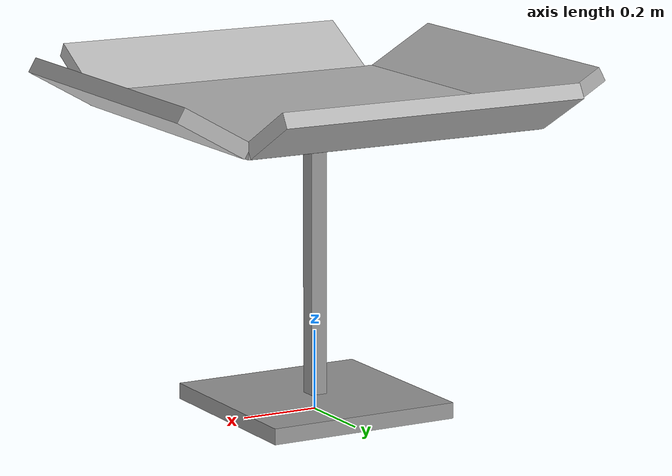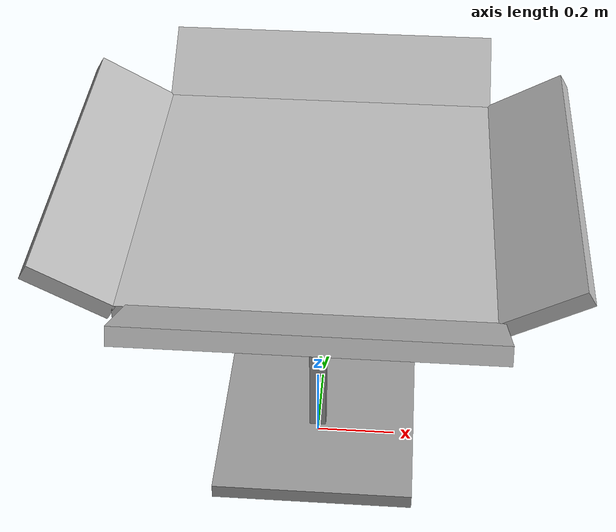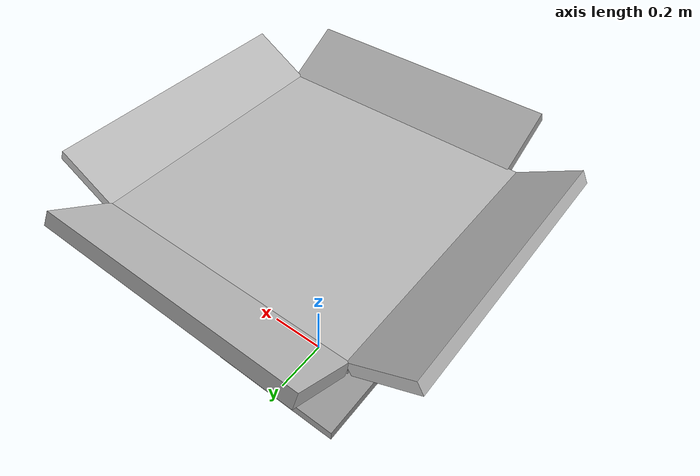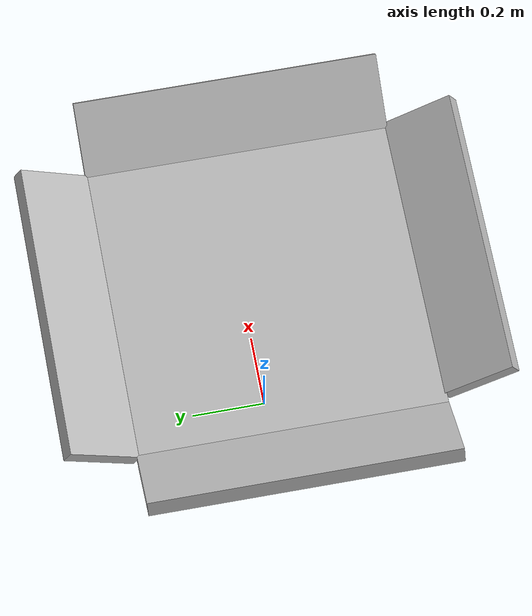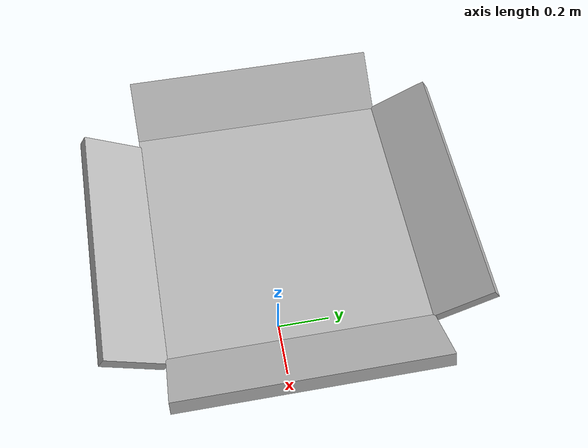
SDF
<?xml version="1.0" ?>
<sdf version="1.4">
  <model name="Table 1">
    <static>true</static>
    <link name="link">
      <collision name="surface">
        <pose>0 0 0.755 0 0 0</pose>
        <geometry>
          <box>
            <size>0.8 0.8 0.04</size>
          </box>
        </geometry>
        <surface>
          <friction>
            <ode>
              <mu>0.2</mu>
              <mu2>0.2</mu2>
            </ode>
          </friction>
        </surface>
      </collision>
      <visual name="surface">
        <pose>0 0 0.755 0 0 0</pose>
        <geometry>
          <box>
            <size>0.8 0.8 0.04</size>
          </box>
        </geometry>
        <material>
          <script>
            <uri>/home/wuyang/workspace/catkin_ws/src/poke_gazebo/models/table_1/materials/scripts</uri>
            <uri>/home/wuyang/workspace/catkin_ws/src/poke_gazebo/models/table_1/materials/textures</uri>
            <name>BrickBox/Diffuse</name>
          </script>
        </material>
      </visual>

      <collision name="surface1">
        <pose>0.02 -0.48660254037844388 0.805 -0.5235987755982988 0 0</pose>
        <geometry>
          <box>
            <size>0.78 0.2 0.04</size>
          </box>
        </geometry>
        <surface>
          <friction>
            <ode>
              <mu>0.2</mu>
              <mu2>0.2</mu2>
            </ode>
          </friction>
        </surface>
      </collision>
      <visual name="surface1">
        <!-- one centimeters to each side of the link arm.-->
        <pose>0.02 -0.48660254037844388 0.805 -0.5235987755982988 0 0</pose>
        <geometry>
          <box>
            <size>0.78 0.2 0.04</size>
          </box>
        </geometry>
        <material>
          <script>
            <uri>/home/wuyang/workspace/catkin_ws/src/poke_gazebo/models/table_1/materials/scripts</uri>
            <uri>/home/wuyang/workspace/catkin_ws/src/poke_gazebo/models/table_1/materials/textures</uri>
            <name>BrickBox/Diffuse</name>
          </script>
        </material>
      </visual>
      <collision name="surface2">
        <pose>0 0.48660254037844388 0.805 0.5235987755982988 0 0</pose>
        <geometry>
          <box>
            <size>0.8 0.2 0.04</size>
          </box>
        </geometry>
        <surface>
          <friction>
            <ode>
              <mu>0.2</mu>
              <mu2>0.2</mu2>
            </ode>
          </friction>
        </surface>
      </collision>
      <visual name="surface2">
        <pose>0 0.48660254037844388 0.805 0.5235987755982988 0 0</pose>
        <geometry>
          <box>
            <size>0.8 0.2 0.04</size>
          </box>
        </geometry>
        <material>
          <script>
            <uri>/home/wuyang/workspace/catkin_ws/src/poke_gazebo/models/table_1/materials/scripts</uri>
            <uri>/home/wuyang/workspace/catkin_ws/src/poke_gazebo/models/table_1/materials/textures</uri>
            <name>BrickBox/Diffuse</name>
          </script>
        </material>
      </visual>
      <collision name="surface3">
        <pose>0.48660254037844388 0 0.805 0 -0.5235987755982988 0</pose>
        <geometry>
          <box>
            <size>0.2 0.8 0.04</size>
          </box>
        </geometry>
        <surface>
          <friction>
            <ode>
              <mu>0.2</mu>
              <mu2>0.2</mu2>
            </ode>
          </friction>
        </surface>
      </collision>
      <visual name="surface3">
        <pose>0.48660254037844388 0 0.805 0 -0.5235987755982988 0</pose>
        <geometry>
          <box>
            <size>0.2 0.8 0.04</size>
          </box>
        </geometry>
        <material>
          <script>
            <uri>/home/wuyang/workspace/catkin_ws/src/poke_gazebo/models/table_1/materials/scripts</uri>
            <uri>/home/wuyang/workspace/catkin_ws/src/poke_gazebo/models/table_1/materials/textures</uri>
            <name>BrickBox/Diffuse</name>
          </script>
        </material>
      </visual>
      <collision name="surface4">
        <pose>-0.48660254037844388 0 0.805 0 0.5235987755982988 0</pose>
        <geometry>
          <box>
            <size>0.2 0.8 0.04</size>
          </box>
        </geometry>
        <surface>
          <friction>
            <ode>
              <mu>0.2</mu>
              <mu2>0.2</mu2>
            </ode>
          </friction>
        </surface>
      </collision>
      <visual name="surface4">
        <pose>-0.48660254037844388 0 0.805 0 0.5235987755982988 0</pose>
        <geometry>
          <box>
            <size>0.2 0.8 0.04</size>
          </box>
        </geometry>
        <material>
          <script>
            <uri>/home/wuyang/workspace/catkin_ws/src/poke_gazebo/models/table_1/materials/scripts</uri>
            <uri>/home/wuyang/workspace/catkin_ws/src/poke_gazebo/models/table_1/materials/textures</uri>
            <name>BrickBox/Diffuse</name>
          </script>
        </material>
      </visual>

      <collision name="column">
        <pose>0 0 0.37 0 0 0</pose>
        <geometry>
          <box>
            <size>0.042 0.042 0.74</size>
          </box>
        </geometry>
      </collision>
      <visual name="column">
        <pose>0 0 0.37 0 0 0</pose>
        <geometry>
          <box>
            <size>0.042 0.042 0.74</size>
          </box>
        </geometry>
        <material>
          <script>
            <uri>file://media/materials/scripts/gazebo.material</uri>
            <name>Gazebo/Grey</name>
          </script>
        </material>
      </visual>

      <collision name="base">
        <pose>0 0 0.02 0 0 0</pose>
        <geometry>
          <box>
            <size>0.5 0.5 0.04</size>
          </box>
        </geometry>
      </collision>
      <visual name="base">
        <pose>0 0 0.02 0 0 0</pose>
        <geometry>
          <box>
            <size>0.5 0.5 0.04</size>
          </box>
        </geometry>
        <material>
          <script>
            <uri>file://media/materials/scripts/gazebo.material</uri>
            <name>Gazebo/Grey</name>
          </script>
        </material>
      </visual>
    </link>
  </model>
</sdf>
